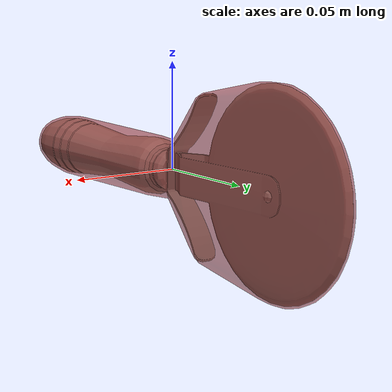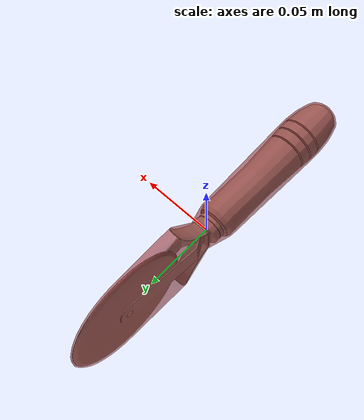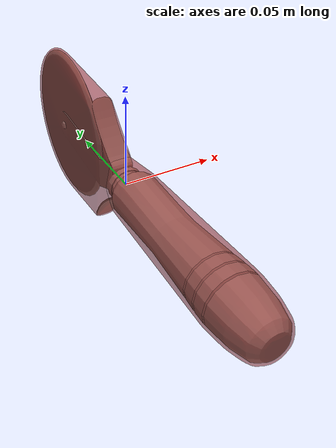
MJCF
<mujoco model="model">
  <option timestep="0.002" gravity="0.0 0.0 -9.81"/>
  <compiler angle="radian"/>
  <asset>
    <mesh file="visual/PizzaCutter002.obj" name="PizzaCutter002_vis"/>
    <mesh file="visual/Prop.obj" name="PizzaCutter002_Prop_vis"/>
    <texture file="visual/T_BC001.png" name="PizzaCutter002_material" type="2d"/>
    <material name="PizzaCutter002_material" rgba="1 1 1 1.0" texture="PizzaCutter002_material" shininess="0.1" specular="1"/>
    <texture file="visual/T_BC001.png" name="PizzaCutter002_Prop_material" type="2d"/>
    <material name="PizzaCutter002_Prop_material" rgba="1 1 1 1.0" texture="PizzaCutter002_Prop_material" shininess="0.1" specular="5"/>
    <mesh file="collision/collision_mesh_collision_0.obj" name="PizzaCutter002_collision_mesh_0"/>
    <mesh file="collision/collision_mesh_collision_1.obj" name="PizzaCutter002_collision_mesh_1"/>
  </asset>
  <default>
    <default class="visual">
      <geom conaffinity="0" contype="0" group="1" type="mesh"/>
    </default>
    <default class="collision">
      <geom group="0" rgba="0.5 0 0 0.5" density="1.0" solref="0.004 1" solimp="0.998 0.998 0.001"/>
    </default>
    <default class="spawn">
      <geom group="0" rgba="1 1 1 0.5" contype="0" conaffinity="0"/>
      <site group="0" rgba="1 1 1 0.5"/>
    </default>
    <default class="region">
      <geom group="1" conaffinity="0" contype="0" rgba="0 1 0 0" mass="0"/>
    </default>
  </default>
  <worldbody>
    <body>
      <body name="object">
        <geom mesh="PizzaCutter002_vis" type="mesh" solimp="0.998 0.998 0.001" solref="0.001 1" friction="0.95 0.3 0.1" class="visual" material="PizzaCutter002_material"/>
        <body name="PizzaCutter002_Prop">
          <geom mesh="PizzaCutter002_Prop_vis" type="mesh" solimp="0.998 0.998 0.001" solref="0.001 1" friction="0.95 0.3 0.1" class="visual" material="PizzaCutter002_Prop_material"/>
        </body>
        <geom class="region" name="reg_bbox" type="box" pos="1.8499999999976868e-07 -0.00035700000000000315 -3.255999999999745e-05" size="0.015893445 0.11879037 0.04559715"/>
        <geom mesh="PizzaCutter002_collision_mesh_0" type="mesh" class="collision"/>
        <geom mesh="PizzaCutter002_collision_mesh_1" type="mesh" class="collision"/>
      </body>
    </body>
  </worldbody>
  <actuator/>
</mujoco>
